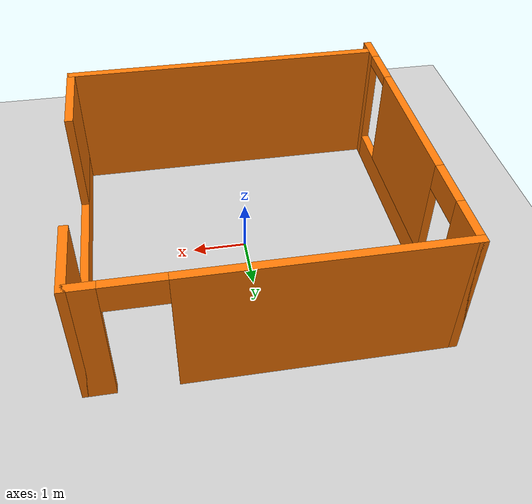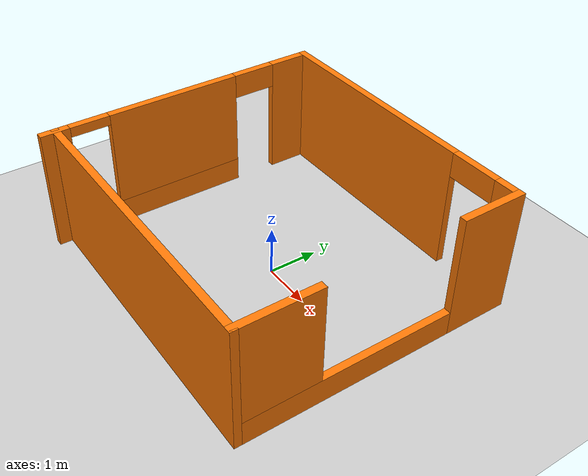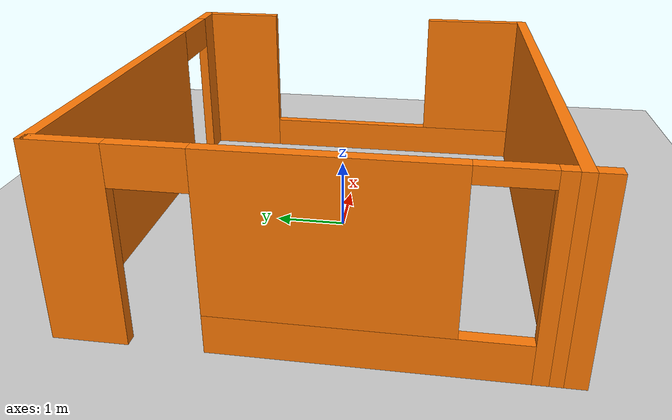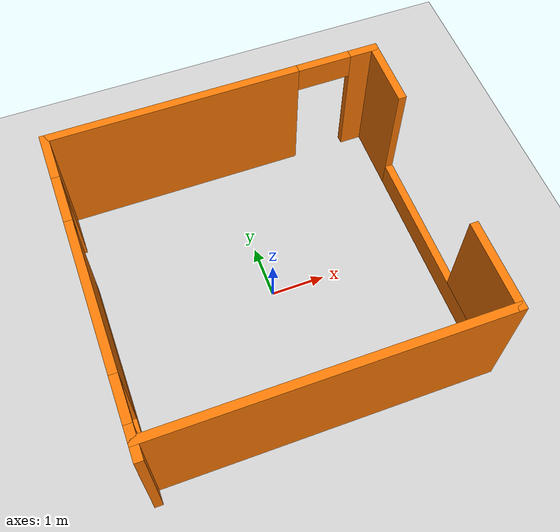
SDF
<sdf version="1.6">
 <world name="default">
  <light name="sun" type="directional">
   <pose>0 0 10 0 -0 0</pose>
   <diffuse>0.8 0.8 0.8 1</diffuse>
   <specular>0.2 0.2 0.2 1</specular>
   <attenuation>
    <range>1000</range>
    <constant>0.9</constant>
    <linear>0.01</linear>
    <quadratic>0.001</quadratic>
   </attenuation>
   <direction>-0.5 0.1 -0.9</direction>
  </light>
  <model name="ground_plane">
   <static>1</static>
   <link name="link">
    <collision name="collision">
     <geometry><plane><normal>0 0 1</normal><size>100 100</size></plane></geometry>
     <surface>
      <contact><collide_bitmask>65535</collide_bitmask></contact>
      <friction><ode><mu>100</mu><mu2>50</mu2></ode></friction>
     </surface>
    </collision>
    <visual name="visual">
     <cast_shadows>0</cast_shadows>
     <geometry><plane><normal>0 0 1</normal><size>100 100</size></plane></geometry>
     <material>
      <script><uri>file://media/materials/scripts/gazebo.material</uri><name>Gazebo/Grey</name></script>
     </material>
    </visual>
   </link>
  </model>
  <gravity>0 0 -9.8</gravity>
  <magnetic_field>6e-06 2.3e-05 -4.2e-05</magnetic_field>
  <atmosphere type="adiabatic"/>
  <physics name="default_physics" default="0" type="ode">
   <max_step_size>0.001</max_step_size>
   <real_time_factor>1</real_time_factor>
   <real_time_update_rate>1000</real_time_update_rate>
  </physics>
  <scene><ambient>0.4 0.4 0.4 1</ambient><background>0.7 0.7 0.7 1</background><shadows>1</shadows></scene>
  <spherical_coordinates>
   <surface_model>EARTH_WGS84</surface_model>
   <latitude_deg>0</latitude_deg>
   <longitude_deg>0</longitude_deg>
   <elevation>0</elevation>
   <heading_deg>0</heading_deg>
  </spherical_coordinates>
  <model name="Single_Room">
   <pose>-0.036883 -0.025902 0 0 -0 0</pose>
   <link name="Wall_0">
    <pose>-3.05 0 0 0 -0 1.5708</pose>
    <visual name="Wall_0_Visual_0">
     <pose>-2.70979 0 1.25 0 -0 0</pose>
     <geometry><box><size>0.580411 0.15 2.5</size></box></geometry>
     <material>
      <script><uri>file://media/materials/scripts/gazebo.material</uri><name>Gazebo/Grey</name></script>
      <ambient>0.996078 0.47451 0.0196078 1</ambient>
     </material>
     <meta><layer>0</layer></meta>
    </visual>
    <collision name="Wall_0_Collision_0">
     <geometry><box><size>0.580411 0.15 2.5</size></box></geometry>
     <pose>-2.70979 0 1.25 0 -0 0</pose>
    </collision>
    <visual name="Wall_0_Visual_1">
     <pose>2.53732 0 1.25 0 -0 0</pose>
     <geometry><box><size>0.925361 0.15 2.5</size></box></geometry>
     <material>
      <script><uri>file://media/materials/scripts/gazebo.material</uri><name>Gazebo/Grey</name></script>
      <ambient>0.996078 0.47451 0.0196078 1</ambient>
     </material>
     <meta><layer>0</layer></meta>
    </visual>
    <collision name="Wall_0_Collision_1">
     <geometry><box><size>0.925361 0.15 2.5</size></box></geometry>
     <pose>2.53732 0 1.25 0 -0 0</pose>
    </collision>
    <visual name="Wall_0_Visual_2">
     <pose>-0.622475 0 0.25 0 -0 0</pose>
     <geometry><box><size>3.59423 0.15 0.5</size></box></geometry>
     <material>
      <script><uri>file://media/materials/scripts/gazebo.material</uri><name>Gazebo/Grey</name></script>
      <ambient>0.996078 0.47451 0.0196078 1</ambient>
     </material>
     <meta><layer>0</layer></meta>
    </visual>
    <collision name="Wall_0_Collision_2">
     <geometry><box><size>3.59423 0.15 0.5</size></box></geometry>
     <pose>-0.622475 0 0.25 0 -0 0</pose>
    </collision>
    <visual name="Wall_0_Visual_3">
     <pose>-0.222475 0 1.5 0 -0 0</pose>
     <geometry><box><size>2.79423 0.15 2</size></box></geometry>
     <material>
      <script><uri>file://media/materials/scripts/gazebo.material</uri><name>Gazebo/Grey</name></script>
      <ambient>0.996078 0.47451 0.0196078 1</ambient>
     </material>
     <meta><layer>0</layer></meta>
    </visual>
    <collision name="Wall_0_Collision_3">
     <geometry><box><size>2.79423 0.15 2</size></box></geometry>
     <pose>-0.222475 0 1.5 0 -0 0</pose>
    </collision>
    <visual name="Wall_0_Visual_4">
     <pose>1.62464 0 2.25 0 -0 0</pose>
     <geometry><box><size>0.9 0.15 0.5</size></box></geometry>
     <material>
      <script><uri>file://media/materials/scripts/gazebo.material</uri><name>Gazebo/Grey</name></script>
      <ambient>0.996078 0.47451 0.0196078 1</ambient>
     </material>
     <meta><layer>0</layer></meta>
    </visual>
    <collision name="Wall_0_Collision_4">
     <geometry><box><size>0.9 0.15 0.5</size></box></geometry>
     <pose>1.62464 0 2.25 0 -0 0</pose>
    </collision>
    <visual name="Wall_0_Visual_5">
     <pose>-2.01959 0 2.4 0 -0 0</pose>
     <geometry><box><size>0.8 0.15 0.2</size></box></geometry>
     <material>
      <script><uri>file://media/materials/scripts/gazebo.material</uri><name>Gazebo/Grey</name></script>
      <ambient>0.996078 0.47451 0.0196078 1</ambient>
     </material>
     <meta><layer>0</layer></meta>
    </visual>
    <collision name="Wall_0_Collision_5">
     <geometry><box><size>0.8 0.15 0.2</size></box></geometry>
     <pose>-2.01959 0 2.4 0 -0 0</pose>
    </collision>
   </link>
   <link name="Wall_1">
    <pose>0 2.925 0 0 -0 0</pose>
    <visual name="Wall_1_Visual_0">
     <pose>-0.778656 0 1.25 0 -0 0</pose>
     <geometry><box><size>4.69269 0.15 2.5</size></box></geometry>
     <material>
      <script><uri>file://media/materials/scripts/gazebo.material</uri><name>Gazebo/Grey</name></script>
      <ambient>0.996078 0.47451 0.0196078 1</ambient>
     </material>
     <meta><layer>0</layer></meta>
    </visual>
    <collision name="Wall_1_Collision_0">
     <geometry><box><size>4.69269 0.15 2.5</size></box></geometry>
     <pose>-0.778656 0 1.25 0 -0 0</pose>
    </collision>
    <visual name="Wall_1_Visual_1">
     <pose>2.84634 0 1.25 0 -0 0</pose>
     <geometry><box><size>0.557312 0.15 2.5</size></box></geometry>
     <material>
      <script><uri>file://media/materials/scripts/gazebo.material</uri><name>Gazebo/Grey</name></script>
      <ambient>0.996078 0.47451 0.0196078 1</ambient>
     </material>
     <meta><layer>0</layer></meta>
    </visual>
    <collision name="Wall_1_Collision_1">
     <geometry><box><size>0.557312 0.15 2.5</size></box></geometry>
     <pose>2.84634 0 1.25 0 -0 0</pose>
    </collision>
    <visual name="Wall_1_Visual_2">
     <pose>2.06769 0 2.25 0 -0 0</pose>
     <geometry><box><size>1 0.15 0.5</size></box></geometry>
     <material>
      <script><uri>file://media/materials/scripts/gazebo.material</uri><name>Gazebo/Grey</name></script>
      <ambient>0.996078 0.47451 0.0196078 1</ambient>
     </material>
     <meta><layer>0</layer></meta>
    </visual>
    <collision name="Wall_1_Collision_2">
     <geometry><box><size>1 0.15 0.5</size></box></geometry>
     <pose>2.06769 0 2.25 0 -0 0</pose>
    </collision>
   </link>
   <link name="Wall_2">
    <pose>3.05 0.125 0 0 -0 -1.5708</pose>
    <visual name="Wall_2_Visual_0">
     <pose>-2.20193 0 1.25 0 -0 0</pose>
     <geometry><box><size>1.34614 0.15 2.5</size></box></geometry>
     <material>
      <script><uri>file://media/materials/scripts/gazebo.material</uri><name>Gazebo/Grey</name></script>
      <ambient>0.996078 0.47451 0.0196078 1</ambient>
     </material>
     <meta><layer>0</layer></meta>
    </visual>
    <collision name="Wall_2_Collision_0">
     <geometry><box><size>1.34614 0.15 2.5</size></box></geometry>
     <pose>-2.20193 0 1.25 0 -0 0</pose>
    </collision>
    <visual name="Wall_2_Visual_1">
     <pose>0.673068 0 0.25 0 -0 0</pose>
     <geometry><box><size>4.40386 0.15 0.5</size></box></geometry>
     <material>
      <script><uri>file://media/materials/scripts/gazebo.material</uri><name>Gazebo/Grey</name></script>
      <ambient>0.996078 0.47451 0.0196078 1</ambient>
     </material>
     <meta><layer>0</layer></meta>
    </visual>
    <collision name="Wall_2_Collision_1">
     <geometry><box><size>4.40386 0.15 0.5</size></box></geometry>
     <pose>0.673068 0 0.25 0 -0 0</pose>
    </collision>
    <visual name="Wall_2_Visual_2">
     <pose>2.04307 0 1.5 0 -0 0</pose>
     <geometry><box><size>1.66386 0.15 2</size></box></geometry>
     <material>
      <script><uri>file://media/materials/scripts/gazebo.material</uri><name>Gazebo/Grey</name></script>
      <ambient>0.996078 0.47451 0.0196078 1</ambient>
     </material>
     <meta><layer>0</layer></meta>
    </visual>
    <collision name="Wall_2_Collision_2">
     <geometry><box><size>1.66386 0.15 2</size></box></geometry>
     <pose>2.04307 0 1.5 0 -0 0</pose>
    </collision>
   </link>
   <link name="Wall_3">
    <collision name="Wall_3_Collision">
     <geometry><box><size>6.25 0.15 2.5</size></box></geometry>
     <pose>0 0 1.25 0 -0 0</pose>
    </collision>
    <visual name="Wall_3_Visual">
     <pose>0 0 1.25 0 -0 0</pose>
     <geometry><box><size>6.25 0.15 2.5</size></box></geometry>
     <material>
      <script><uri>file://media/materials/scripts/gazebo.material</uri><name>Gazebo/Grey</name></script>
      <ambient>0.996078 0.47451 0.0196078 1</ambient>
     </material>
     <meta><layer>0</layer></meta>
    </visual>
    <pose>0 -2.675 0 0 -0 3.14159</pose>
   </link>
   <static>1</static>
  </model>
 </world>
</sdf>
